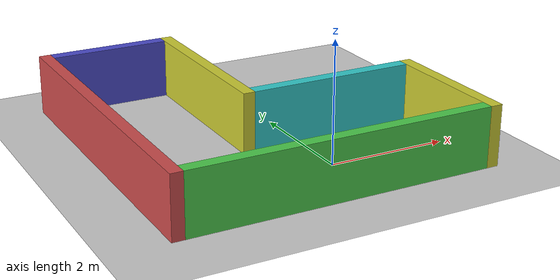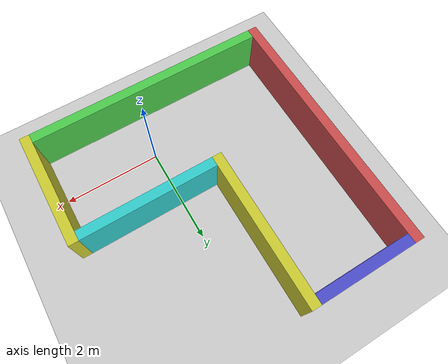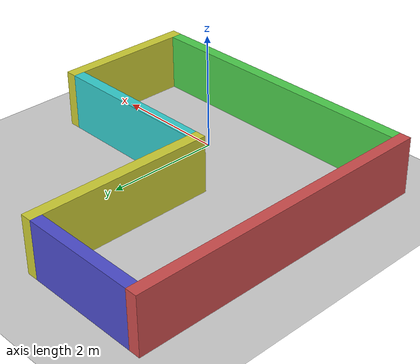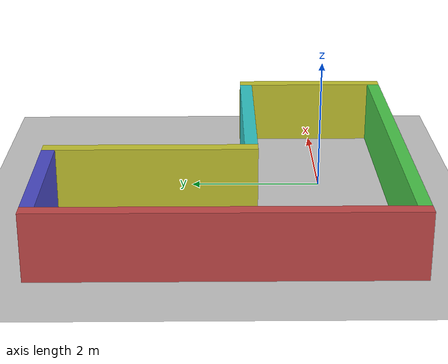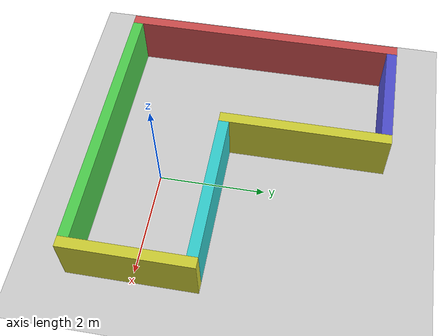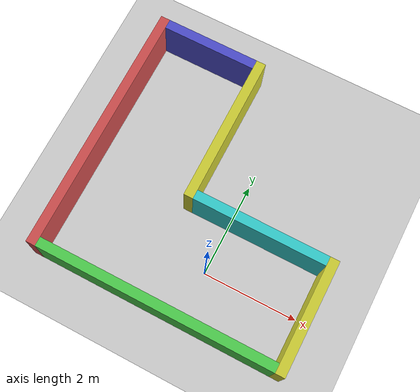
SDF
<sdf version="1.10">
  <world name="empty">
    <!-- Física -->
    <physics name="1ms" type="ignored">
      <max_step_size>0.001</max_step_size>
      <real_time_factor>1.0</real_time_factor>
    </physics>

    <!-- Plugins -->
    <plugin filename="gz-sim-physics-system" name="gz::sim::systems::Physics"/>
    <plugin filename="gz-sim-user-commands-system" name="gz::sim::systems::UserCommands"/>
    <plugin filename="gz-sim-scene-broadcaster-system" name="gz::sim::systems::SceneBroadcaster"/>
    <plugin filename="gz-sim-sensors-system" name="gz::sim::systems::Sensors">
      <render_engine>ogre2</render_engine>
    </plugin>
    <plugin filename="gz-sim-contact-system" name="gz::sim::systems::Contact"/>

    <!-- Luz -->
    <light type="directional" name="sun">
      <cast_shadows>true</cast_shadows>
      <pose>0 0 10 0 0 0</pose>
      <diffuse>0.8 0.8 0.8 1</diffuse>
      <specular>0.2 0.2 0.2 1</specular>
      <attenuation>
        <range>1000</range>
        <constant>0.9</constant>
        <linear>0.01</linear>
        <quadratic>0.001</quadratic>
      </attenuation>
      <direction>-0.5 0.1 -0.9</direction>
    </light>

    <!-- Chão -->
    <model name="ground_plane">
      <static>true</static>
      <link name="link">
        <collision name="collision">
          <geometry>
            <plane>
              <normal>0 0 1</normal>
              <size>50 50</size>
            </plane>
          </geometry>
        </collision>
        <visual name="visual">
          <geometry>
            <plane>
              <normal>0 0 1</normal>
              <size>50 50</size>
            </plane>
          </geometry>
          <material>
            <ambient>0.8 0.8 0.8 1</ambient>
            <diffuse>0.8 0.8 0.8 1</diffuse>
            <specular>0.8 0.8 0.8 1</specular>
          </material>
        </visual>
      </link>
    </model>

    <!-- PAREDES DO CORREDOR EM L -->

    <!-- Parte horizontal superior -->
    <model name="wall_top">
      <static>true</static>
      <pose>-2 4.1 0.5 0 0 0</pose>
      <link name="link">
        <collision name="collision">
          <geometry>
            <box>
              <size>2 0.2 1</size>
            </box>
          </geometry>
        </collision>
        <visual name="visual">
          <geometry>
            <box>
              <size>2 0.2 1</size>
            </box>
          </geometry>
          <material>
            <ambient>0.3 0.3 0.8 1</ambient>
            <diffuse>0.3 0.3 0.8 1</diffuse>
          </material>
        </visual>
      </link>
    </model>

    <!-- Parte esquerda vertical -->
    <model name="wall_left">
      <static>true</static>
      <pose>-3.1 1.5 0.5 0 0 0</pose>
      <link name="link">
        <collision name="collision">
          <geometry>
            <box>
              <size>0.2 5.4 1</size>
            </box>
          </geometry>
        </collision>
        <visual name="visual">
          <geometry>
            <box>
              <size>0.2 5.4 1</size>
            </box>
          </geometry>
          <material>
            <ambient>0.8 0.3 0.3 1</ambient>
            <diffuse>0.8 0.3 0.3 1</diffuse>
          </material>
        </visual>
      </link>
    </model>

    <!-- Base horizontal (parte inferior do L) -->
    <model name="wall_bottom">
      <static>true</static>
      <pose>-0.5 -1.1 0.5 0 0 0</pose>
      <link name="link">
        <collision name="collision">
          <geometry>
            <box>
              <size>5 0.2 1</size>
            </box>
          </geometry>
        </collision>
        <visual name="visual">
          <geometry>
            <box>
              <size>5 0.2 1</size>
            </box>
          </geometry>
          <material>
            <ambient>0.3 0.8 0.3 1</ambient>
            <diffuse>0.3 0.8 0.3 1</diffuse>
          </material>
        </visual>
      </link>
    </model>

    <!-- Parede vertical da perna do L -->
    <model name="wall_right_vertical">
      <static>true</static>
      <pose>2.1 0 0.5 0 0 0</pose>
      <link name="link">
        <collision name="collision">
          <geometry>
            <box>
              <size>0.2 2.4 1</size>
            </box>
          </geometry>
        </collision>
        <visual name="visual">
          <geometry>
            <box>
              <size>0.2 2.4 1</size>
            </box>
          </geometry>
          <material>
            <ambient>0.8 0.8 0.2 1</ambient>
            <diffuse>0.8 0.8 0.2 1</diffuse>
          </material>
        </visual>
      </link>
    </model>

    <!-- Parede interna vertical da perna do L -->
    <model name="wall_interna_vertical">
      <static>true</static>
      <pose>-0.9 2.6 0.5 0 0 0</pose>
      <link name="link">
        <collision name="collision">
          <geometry>
            <box>
              <size>0.2 3.2 1</size>
            </box>
          </geometry>
        </collision>
        <visual name="visual">
          <geometry>
            <box>
              <size>0.2 3.2 1</size>
            </box>
          </geometry>
          <material>
            <ambient>0.8 0.8 0.2 1</ambient>
            <diffuse>0.8 0.8 0.2 1</diffuse>
          </material>
        </visual>
      </link>
    </model>

    <!-- Topo da perna do L -->
    <model name="wall_inner_top">
      <static>true</static>
      <pose>0.6 1.1 0.5 0 0 0</pose>
      <link name="link">
        <collision name="collision">
          <geometry>
            <box>
              <size>2.8 0.2 1</size>
            </box>
          </geometry>
        </collision>
        <visual name="visual">
          <geometry>
            <box>
              <size>2.8 0.2 1</size>
            </box>
          </geometry>
          <material>
            <ambient>0.2 0.8 0.8 1</ambient>
            <diffuse>0.2 0.8 0.8 1</diffuse>
          </material>
        </visual>
      </link>
    </model>

  </world>
</sdf>
